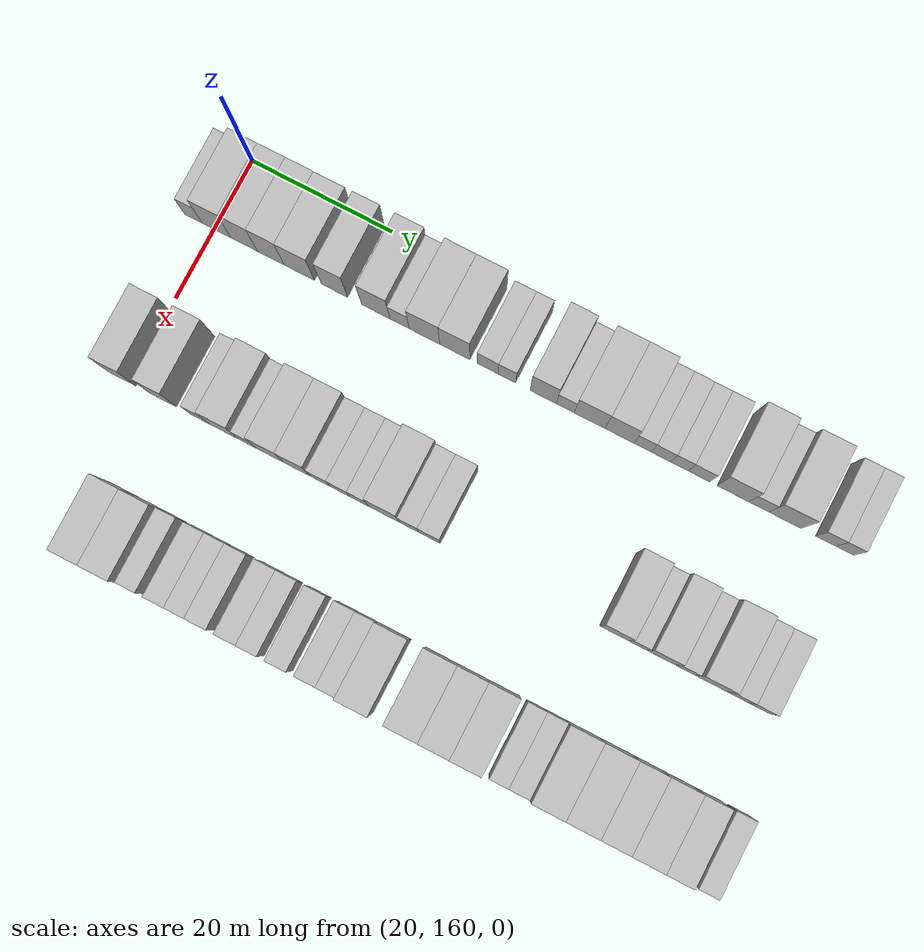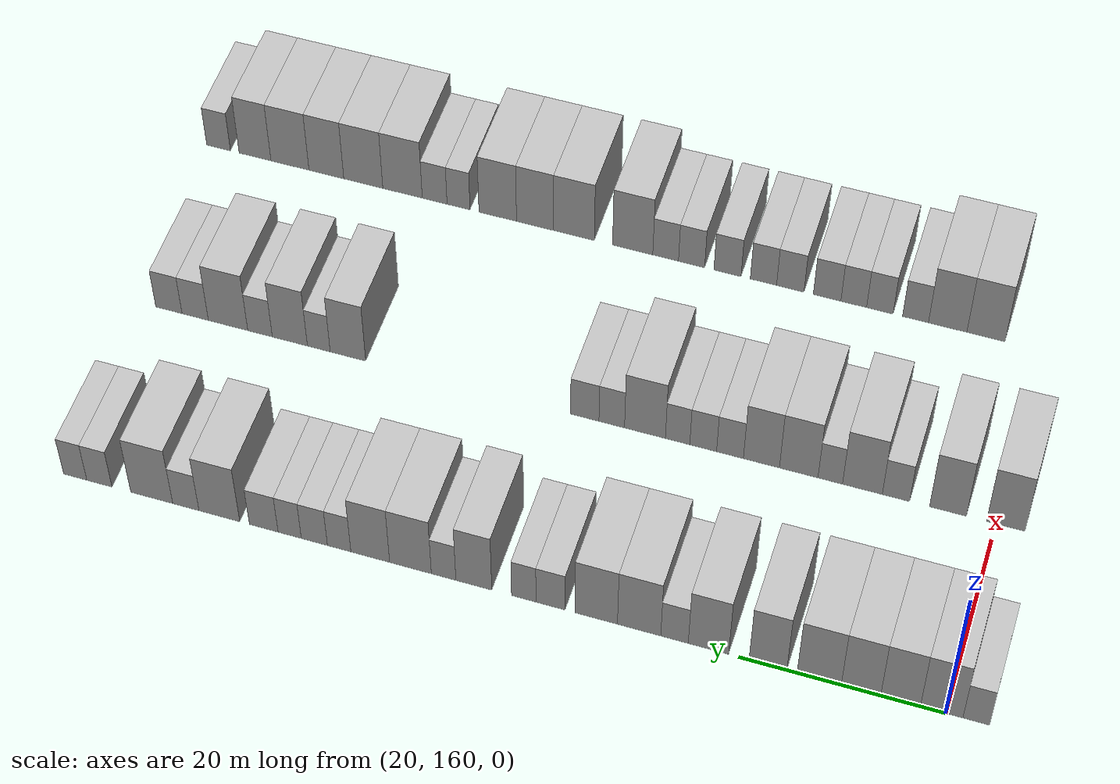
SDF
<sdf version="1.6">
 <world name="default">
  <model name="building_97">
   <static>1</static>
   <pose>25.0000 157.0864 0 0.000000 0.000000 0.000000</pose>
   <link name="link">
    <pose>0 0 3.00 0 0 0</pose>
    <collision name="collision"><geometry><box><size>10.0000 2.5340 6.0000</size></box></geometry></collision>
    <visual name="visual">
     <cast_shadows>0</cast_shadows>
     <geometry><box><size>10.0000 2.5340 6.0000</size></box></geometry>
     <material>
      <script>
       <uri>model://HANNAS_wall/materials/scripts</uri>
       <uri>model://HANNAS_wall/materials/textures</uri>
       <name>vrc/HANNAS_wall</name>
      </script>
     </material>
    </visual>
   </link>
  </model>
  <model name="building_98">
   <static>1</static>
   <pose>25.0000 160.3821 0 0.000000 0.000000 0.000000</pose>
   <link name="link">
    <pose>0 0 4.50 0 0 0</pose>
    <collision name="collision"><geometry><box><size>10.0000 4.0575 9.0000</size></box></geometry></collision>
    <visual name="visual">
     <cast_shadows>0</cast_shadows>
     <geometry><box><size>10.0000 4.0575 9.0000</size></box></geometry>
     <material>
      <script>
       <uri>model://HANNAS_wall/materials/scripts</uri>
       <uri>model://HANNAS_wall/materials/textures</uri>
       <name>vrc/HANNAS_wall</name>
      </script>
     </material>
    </visual>
   </link>
  </model>
  <model name="building_99">
   <static>1</static>
   <pose>25.0000 164.3133 0 0.000000 0.000000 0.000000</pose>
   <link name="link">
    <pose>0 0 4.50 0 0 0</pose>
    <collision name="collision"><geometry><box><size>10.0000 3.8048 9.0000</size></box></geometry></collision>
    <visual name="visual">
     <cast_shadows>0</cast_shadows>
     <geometry><box><size>10.0000 3.8048 9.0000</size></box></geometry>
     <material>
      <script>
       <uri>model://HANNAS_wall/materials/scripts</uri>
       <uri>model://HANNAS_wall/materials/textures</uri>
       <name>vrc/HANNAS_wall</name>
      </script>
     </material>
    </visual>
   </link>
  </model>
  <model name="building_100">
   <static>1</static>
   <pose>25.0000 168.1151 0 0.000000 0.000000 0.000000</pose>
   <link name="link">
    <pose>0 0 4.50 0 0 0</pose>
    <collision name="collision"><geometry><box><size>10.0000 3.7987 9.0000</size></box></geometry></collision>
    <visual name="visual">
     <cast_shadows>0</cast_shadows>
     <geometry><box><size>10.0000 3.7987 9.0000</size></box></geometry>
     <material>
      <script>
       <uri>model://HANNAS_wall/materials/scripts</uri>
       <uri>model://HANNAS_wall/materials/textures</uri>
       <name>vrc/HANNAS_wall</name>
      </script>
     </material>
    </visual>
   </link>
  </model>
  <model name="building_101">
   <static>1</static>
   <pose>25.0000 172.1511 0 0.000000 0.000000 0.000000</pose>
   <link name="link">
    <pose>0 0 4.50 0 0 0</pose>
    <collision name="collision"><geometry><box><size>10.0000 4.2734 9.0000</size></box></geometry></collision>
    <visual name="visual">
     <cast_shadows>0</cast_shadows>
     <geometry><box><size>10.0000 4.2734 9.0000</size></box></geometry>
     <material>
      <script>
       <uri>model://HANNAS_wall/materials/scripts</uri>
       <uri>model://HANNAS_wall/materials/textures</uri>
       <name>vrc/HANNAS_wall</name>
      </script>
     </material>
    </visual>
   </link>
  </model>
  <model name="building_102">
   <static>1</static>
   <pose>25.0000 177.1280 0 0.000000 0.000000 0.000000</pose>
   <link name="link">
    <pose>0 0 4.50 0 0 0</pose>
    <collision name="collision"><geometry><box><size>10.0000 3.6802 9.0000</size></box></geometry></collision>
    <visual name="visual">
     <cast_shadows>0</cast_shadows>
     <geometry><box><size>10.0000 3.6802 9.0000</size></box></geometry>
     <material>
      <script>
       <uri>model://HANNAS_wall/materials/scripts</uri>
       <uri>model://HANNAS_wall/materials/textures</uri>
       <name>vrc/HANNAS_wall</name>
      </script>
     </material>
    </visual>
   </link>
  </model>
  <model name="building_103">
   <static>1</static>
   <pose>25.0000 182.9523 0 0.000000 0.000000 0.000000</pose>
   <link name="link">
    <pose>0 0 4.50 0 0 0</pose>
    <collision name="collision"><geometry><box><size>10.0000 3.9685 9.0000</size></box></geometry></collision>
    <visual name="visual">
     <cast_shadows>0</cast_shadows>
     <geometry><box><size>10.0000 3.9685 9.0000</size></box></geometry>
     <material>
      <script>
       <uri>model://HANNAS_wall/materials/scripts</uri>
       <uri>model://HANNAS_wall/materials/textures</uri>
       <name>vrc/HANNAS_wall</name>
      </script>
     </material>
    </visual>
   </link>
  </model>
  <model name="building_104">
   <static>1</static>
   <pose>25.0000 186.2955 0 0.000000 0.000000 0.000000</pose>
   <link name="link">
    <pose>0 0 3.00 0 0 0</pose>
    <collision name="collision"><geometry><box><size>10.0000 2.7180 6.0000</size></box></geometry></collision>
    <visual name="visual">
     <cast_shadows>0</cast_shadows>
     <geometry><box><size>10.0000 2.7180 6.0000</size></box></geometry>
     <material>
      <script>
       <uri>model://HANNAS_wall/materials/scripts</uri>
       <uri>model://HANNAS_wall/materials/textures</uri>
       <name>vrc/HANNAS_wall</name>
      </script>
     </material>
    </visual>
   </link>
  </model>
  <model name="building_105">
   <static>1</static>
   <pose>25.0000 189.8012 0 0.000000 0.000000 0.000000</pose>
   <link name="link">
    <pose>0 0 4.50 0 0 0</pose>
    <collision name="collision"><geometry><box><size>10.0000 4.2934 9.0000</size></box></geometry></collision>
    <visual name="visual">
     <cast_shadows>0</cast_shadows>
     <geometry><box><size>10.0000 4.2934 9.0000</size></box></geometry>
     <material>
      <script>
       <uri>model://HANNAS_wall/materials/scripts</uri>
       <uri>model://HANNAS_wall/materials/textures</uri>
       <name>vrc/HANNAS_wall</name>
      </script>
     </material>
    </visual>
   </link>
  </model>
  <model name="building_106">
   <static>1</static>
   <pose>25.0000 194.0590 0 0.000000 0.000000 0.000000</pose>
   <link name="link">
    <pose>0 0 4.50 0 0 0</pose>
    <collision name="collision"><geometry><box><size>10.0000 4.2221 9.0000</size></box></geometry></collision>
    <visual name="visual">
     <cast_shadows>0</cast_shadows>
     <geometry><box><size>10.0000 4.2221 9.0000</size></box></geometry>
     <material>
      <script>
       <uri>model://HANNAS_wall/materials/scripts</uri>
       <uri>model://HANNAS_wall/materials/textures</uri>
       <name>vrc/HANNAS_wall</name>
      </script>
     </material>
    </visual>
   </link>
  </model>
  <model name="building_107">
   <static>1</static>
   <pose>25.0000 198.6280 0 0.000000 0.000000 0.000000</pose>
   <link name="link">
    <pose>0 0 3.00 0 0 0</pose>
    <collision name="collision"><geometry><box><size>10.0000 2.9160 6.0000</size></box></geometry></collision>
    <visual name="visual">
     <cast_shadows>0</cast_shadows>
     <geometry><box><size>10.0000 2.9160 6.0000</size></box></geometry>
     <material>
      <script>
       <uri>model://HANNAS_wall/materials/scripts</uri>
       <uri>model://HANNAS_wall/materials/textures</uri>
       <name>vrc/HANNAS_wall</name>
      </script>
     </material>
    </visual>
   </link>
  </model>
  <model name="building_108">
   <static>1</static>
   <pose>25.0000 201.3166 0 0.000000 0.000000 0.000000</pose>
   <link name="link">
    <pose>0 0 3.00 0 0 0</pose>
    <collision name="collision"><geometry><box><size>10.0000 2.4613 6.0000</size></box></geometry></collision>
    <visual name="visual">
     <cast_shadows>0</cast_shadows>
     <geometry><box><size>10.0000 2.4613 6.0000</size></box></geometry>
     <material>
      <script>
       <uri>model://HANNAS_wall/materials/scripts</uri>
       <uri>model://HANNAS_wall/materials/textures</uri>
       <name>vrc/HANNAS_wall</name>
      </script>
     </material>
    </visual>
   </link>
  </model>
  <model name="building_109">
   <static>1</static>
   <pose>25.0000 206.3667 0 0.000000 0.000000 0.000000</pose>
   <link name="link">
    <pose>0 0 4.50 0 0 0</pose>
    <collision name="collision"><geometry><box><size>10.0000 3.6388 9.0000</size></box></geometry></collision>
    <visual name="visual">
     <cast_shadows>0</cast_shadows>
     <geometry><box><size>10.0000 3.6388 9.0000</size></box></geometry>
     <material>
      <script>
       <uri>model://HANNAS_wall/materials/scripts</uri>
       <uri>model://HANNAS_wall/materials/textures</uri>
       <name>vrc/HANNAS_wall</name>
      </script>
     </material>
    </visual>
   </link>
  </model>
  <model name="building_110">
   <static>1</static>
   <pose>25.0000 209.4341 0 0.000000 0.000000 0.000000</pose>
   <link name="link">
    <pose>0 0 3.00 0 0 0</pose>
    <collision name="collision"><geometry><box><size>10.0000 2.4960 6.0000</size></box></geometry></collision>
    <visual name="visual">
     <cast_shadows>0</cast_shadows>
     <geometry><box><size>10.0000 2.4960 6.0000</size></box></geometry>
     <material>
      <script>
       <uri>model://HANNAS_wall/materials/scripts</uri>
       <uri>model://HANNAS_wall/materials/textures</uri>
       <name>vrc/HANNAS_wall</name>
      </script>
     </material>
    </visual>
   </link>
  </model>
  <model name="building_111">
   <static>1</static>
   <pose>25.0000 212.8134 0 0.000000 0.000000 0.000000</pose>
   <link name="link">
    <pose>0 0 4.50 0 0 0</pose>
    <collision name="collision"><geometry><box><size>10.0000 4.2626 9.0000</size></box></geometry></collision>
    <visual name="visual">
     <cast_shadows>0</cast_shadows>
     <geometry><box><size>10.0000 4.2626 9.0000</size></box></geometry>
     <material>
      <script>
       <uri>model://HANNAS_wall/materials/scripts</uri>
       <uri>model://HANNAS_wall/materials/textures</uri>
       <name>vrc/HANNAS_wall</name>
      </script>
     </material>
    </visual>
   </link>
  </model>
  <model name="building_112">
   <static>1</static>
   <pose>25.0000 216.9367 0 0.000000 0.000000 0.000000</pose>
   <link name="link">
    <pose>0 0 4.50 0 0 0</pose>
    <collision name="collision"><geometry><box><size>10.0000 3.9840 9.0000</size></box></geometry></collision>
    <visual name="visual">
     <cast_shadows>0</cast_shadows>
     <geometry><box><size>10.0000 3.9840 9.0000</size></box></geometry>
     <material>
      <script>
       <uri>model://HANNAS_wall/materials/scripts</uri>
       <uri>model://HANNAS_wall/materials/textures</uri>
       <name>vrc/HANNAS_wall</name>
      </script>
     </material>
    </visual>
   </link>
  </model>
  <model name="building_113">
   <static>1</static>
   <pose>25.0000 220.1398 0 0.000000 0.000000 0.000000</pose>
   <link name="link">
    <pose>0 0 3.00 0 0 0</pose>
    <collision name="collision"><geometry><box><size>10.0000 2.4222 6.0000</size></box></geometry></collision>
    <visual name="visual">
     <cast_shadows>0</cast_shadows>
     <geometry><box><size>10.0000 2.4222 6.0000</size></box></geometry>
     <material>
      <script>
       <uri>model://HANNAS_wall/materials/scripts</uri>
       <uri>model://HANNAS_wall/materials/textures</uri>
       <name>vrc/HANNAS_wall</name>
      </script>
     </material>
    </visual>
   </link>
  </model>
  <model name="building_114">
   <static>1</static>
   <pose>25.0000 222.7028 0 0.000000 0.000000 0.000000</pose>
   <link name="link">
    <pose>0 0 3.00 0 0 0</pose>
    <collision name="collision"><geometry><box><size>10.0000 2.7039 6.0000</size></box></geometry></collision>
    <visual name="visual">
     <cast_shadows>0</cast_shadows>
     <geometry><box><size>10.0000 2.7039 6.0000</size></box></geometry>
     <material>
      <script>
       <uri>model://HANNAS_wall/materials/scripts</uri>
       <uri>model://HANNAS_wall/materials/textures</uri>
       <name>vrc/HANNAS_wall</name>
      </script>
     </material>
    </visual>
   </link>
  </model>
  <model name="building_115">
   <static>1</static>
   <pose>25.0000 225.2607 0 0.000000 0.000000 0.000000</pose>
   <link name="link">
    <pose>0 0 3.00 0 0 0</pose>
    <collision name="collision"><geometry><box><size>10.0000 2.4117 6.0000</size></box></geometry></collision>
    <visual name="visual">
     <cast_shadows>0</cast_shadows>
     <geometry><box><size>10.0000 2.4117 6.0000</size></box></geometry>
     <material>
      <script>
       <uri>model://HANNAS_wall/materials/scripts</uri>
       <uri>model://HANNAS_wall/materials/textures</uri>
       <name>vrc/HANNAS_wall</name>
      </script>
     </material>
    </visual>
   </link>
  </model>
  <model name="building_116">
   <static>1</static>
   <pose>25.0000 227.9627 0 0.000000 0.000000 0.000000</pose>
   <link name="link">
    <pose>0 0 3.00 0 0 0</pose>
    <collision name="collision"><geometry><box><size>10.0000 2.9924 6.0000</size></box></geometry></collision>
    <visual name="visual">
     <cast_shadows>0</cast_shadows>
     <geometry><box><size>10.0000 2.9924 6.0000</size></box></geometry>
     <material>
      <script>
       <uri>model://HANNAS_wall/materials/scripts</uri>
       <uri>model://HANNAS_wall/materials/textures</uri>
       <name>vrc/HANNAS_wall</name>
      </script>
     </material>
    </visual>
   </link>
  </model>
  <model name="building_117">
   <static>1</static>
   <pose>25.0000 232.5999 0 0.000000 0.000000 0.000000</pose>
   <link name="link">
    <pose>0 0 4.50 0 0 0</pose>
    <collision name="collision"><geometry><box><size>10.0000 4.2818 9.0000</size></box></geometry></collision>
    <visual name="visual">
     <cast_shadows>0</cast_shadows>
     <geometry><box><size>10.0000 4.2818 9.0000</size></box></geometry>
     <material>
      <script>
       <uri>model://HANNAS_wall/materials/scripts</uri>
       <uri>model://HANNAS_wall/materials/textures</uri>
       <name>vrc/HANNAS_wall</name>
      </script>
     </material>
    </visual>
   </link>
  </model>
  <model name="building_118">
   <static>1</static>
   <pose>25.0000 236.1278 0 0.000000 0.000000 0.000000</pose>
   <link name="link">
    <pose>0 0 3.00 0 0 0</pose>
    <collision name="collision"><geometry><box><size>10.0000 2.7741 6.0000</size></box></geometry></collision>
    <visual name="visual">
     <cast_shadows>0</cast_shadows>
     <geometry><box><size>10.0000 2.7741 6.0000</size></box></geometry>
     <material>
      <script>
       <uri>model://HANNAS_wall/materials/scripts</uri>
       <uri>model://HANNAS_wall/materials/textures</uri>
       <name>vrc/HANNAS_wall</name>
      </script>
     </material>
    </visual>
   </link>
  </model>
  <model name="building_119">
   <static>1</static>
   <pose>25.0000 239.7328 0 0.000000 0.000000 0.000000</pose>
   <link name="link">
    <pose>0 0 4.50 0 0 0</pose>
    <collision name="collision"><geometry><box><size>10.0000 4.4359 9.0000</size></box></geometry></collision>
    <visual name="visual">
     <cast_shadows>0</cast_shadows>
     <geometry><box><size>10.0000 4.4359 9.0000</size></box></geometry>
     <material>
      <script>
       <uri>model://HANNAS_wall/materials/scripts</uri>
       <uri>model://HANNAS_wall/materials/textures</uri>
       <name>vrc/HANNAS_wall</name>
      </script>
     </material>
    </visual>
   </link>
  </model>
  <model name="building_120">
   <static>1</static>
   <pose>25.0000 245.2929 0 0.000000 0.000000 0.000000</pose>
   <link name="link">
    <pose>0 0 3.00 0 0 0</pose>
    <collision name="collision"><geometry><box><size>10.0000 2.6842 6.0000</size></box></geometry></collision>
    <visual name="visual">
     <cast_shadows>0</cast_shadows>
     <geometry><box><size>10.0000 2.6842 6.0000</size></box></geometry>
     <material>
      <script>
       <uri>model://HANNAS_wall/materials/scripts</uri>
       <uri>model://HANNAS_wall/materials/textures</uri>
       <name>vrc/HANNAS_wall</name>
      </script>
     </material>
    </visual>
   </link>
  </model>
  <model name="building_121">
   <static>1</static>
   <pose>25.0000 247.8739 0 0.000000 0.000000 0.000000</pose>
   <link name="link">
    <pose>0 0 3.00 0 0 0</pose>
    <collision name="collision"><geometry><box><size>10.0000 2.4778 6.0000</size></box></geometry></collision>
    <visual name="visual">
     <cast_shadows>0</cast_shadows>
     <geometry><box><size>10.0000 2.4778 6.0000</size></box></geometry>
     <material>
      <script>
       <uri>model://HANNAS_wall/materials/scripts</uri>
       <uri>model://HANNAS_wall/materials/textures</uri>
       <name>vrc/HANNAS_wall</name>
      </script>
     </material>
    </visual>
   </link>
  </model>
  <model name="building_209">
   <static>1</static>
   <pose>47.0000 159.0225 0 0.000000 0.000000 0.000000</pose>
   <link name="link">
    <pose>0 0 4.50 0 0 0</pose>
    <collision name="collision"><geometry><box><size>10.0000 3.8296 9.0000</size></box></geometry></collision>
    <visual name="visual">
     <cast_shadows>0</cast_shadows>
     <geometry><box><size>10.0000 3.8296 9.0000</size></box></geometry>
     <material>
      <script>
       <uri>model://HANNAS_wall/materials/scripts</uri>
       <uri>model://HANNAS_wall/materials/textures</uri>
       <name>vrc/HANNAS_wall</name>
      </script>
     </material>
    </visual>
   </link>
  </model>
  <model name="building_210">
   <static>1</static>
   <pose>47.0000 164.7819 0 0.000000 0.000000 0.000000</pose>
   <link name="link">
    <pose>0 0 4.50 0 0 0</pose>
    <collision name="collision"><geometry><box><size>10.0000 3.6892 9.0000</size></box></geometry></collision>
    <visual name="visual">
     <cast_shadows>0</cast_shadows>
     <geometry><box><size>10.0000 3.6892 9.0000</size></box></geometry>
     <material>
      <script>
       <uri>model://HANNAS_wall/materials/scripts</uri>
       <uri>model://HANNAS_wall/materials/textures</uri>
       <name>vrc/HANNAS_wall</name>
      </script>
     </material>
    </visual>
   </link>
  </model>
  <model name="building_211">
   <static>1</static>
   <pose>47.0000 170.0076 0 0.000000 0.000000 0.000000</pose>
   <link name="link">
    <pose>0 0 3.00 0 0 0</pose>
    <collision name="collision"><geometry><box><size>10.0000 2.7621 6.0000</size></box></geometry></collision>
    <visual name="visual">
     <cast_shadows>0</cast_shadows>
     <geometry><box><size>10.0000 2.7621 6.0000</size></box></geometry>
     <material>
      <script>
       <uri>model://HANNAS_wall/materials/scripts</uri>
       <uri>model://HANNAS_wall/materials/textures</uri>
       <name>vrc/HANNAS_wall</name>
      </script>
     </material>
    </visual>
   </link>
  </model>
  <model name="building_212">
   <static>1</static>
   <pose>47.0000 173.4027 0 0.000000 0.000000 0.000000</pose>
   <link name="link">
    <pose>0 0 4.50 0 0 0</pose>
    <collision name="collision"><geometry><box><size>10.0000 4.0282 9.0000</size></box></geometry></collision>
    <visual name="visual">
     <cast_shadows>0</cast_shadows>
     <geometry><box><size>10.0000 4.0282 9.0000</size></box></geometry>
     <material>
      <script>
       <uri>model://HANNAS_wall/materials/scripts</uri>
       <uri>model://HANNAS_wall/materials/textures</uri>
       <name>vrc/HANNAS_wall</name>
      </script>
     </material>
    </visual>
   </link>
  </model>
  <model name="building_213">
   <static>1</static>
   <pose>47.0000 176.6625 0 0.000000 0.000000 0.000000</pose>
   <link name="link">
    <pose>0 0 3.00 0 0 0</pose>
    <collision name="collision"><geometry><box><size>10.0000 2.4915 6.0000</size></box></geometry></collision>
    <visual name="visual">
     <cast_shadows>0</cast_shadows>
     <geometry><box><size>10.0000 2.4915 6.0000</size></box></geometry>
     <material>
      <script>
       <uri>model://HANNAS_wall/materials/scripts</uri>
       <uri>model://HANNAS_wall/materials/textures</uri>
       <name>vrc/HANNAS_wall</name>
      </script>
     </material>
    </visual>
   </link>
  </model>
  <model name="building_214">
   <static>1</static>
   <pose>47.0000 179.8755 0 0.000000 0.000000 0.000000</pose>
   <link name="link">
    <pose>0 0 4.50 0 0 0</pose>
    <collision name="collision"><geometry><box><size>10.0000 3.9344 9.0000</size></box></geometry></collision>
    <visual name="visual">
     <cast_shadows>0</cast_shadows>
     <geometry><box><size>10.0000 3.9344 9.0000</size></box></geometry>
     <material>
      <script>
       <uri>model://HANNAS_wall/materials/scripts</uri>
       <uri>model://HANNAS_wall/materials/textures</uri>
       <name>vrc/HANNAS_wall</name>
      </script>
     </material>
    </visual>
   </link>
  </model>
  <model name="building_215">
   <static>1</static>
   <pose>47.0000 183.6905 0 0.000000 0.000000 0.000000</pose>
   <link name="link">
    <pose>0 0 4.50 0 0 0</pose>
    <collision name="collision"><geometry><box><size>10.0000 3.6955 9.0000</size></box></geometry></collision>
    <visual name="visual">
     <cast_shadows>0</cast_shadows>
     <geometry><box><size>10.0000 3.6955 9.0000</size></box></geometry>
     <material>
      <script>
       <uri>model://HANNAS_wall/materials/scripts</uri>
       <uri>model://HANNAS_wall/materials/textures</uri>
       <name>vrc/HANNAS_wall</name>
      </script>
     </material>
    </visual>
   </link>
  </model>
  <model name="building_216">
   <static>1</static>
   <pose>47.0000 186.9175 0 0.000000 0.000000 0.000000</pose>
   <link name="link">
    <pose>0 0 3.00 0 0 0</pose>
    <collision name="collision"><geometry><box><size>10.0000 2.7586 6.0000</size></box></geometry></collision>
    <visual name="visual">
     <cast_shadows>0</cast_shadows>
     <geometry><box><size>10.0000 2.7586 6.0000</size></box></geometry>
     <material>
      <script>
       <uri>model://HANNAS_wall/materials/scripts</uri>
       <uri>model://HANNAS_wall/materials/textures</uri>
       <name>vrc/HANNAS_wall</name>
      </script>
     </material>
    </visual>
   </link>
  </model>
  <model name="building_217">
   <static>1</static>
   <pose>47.0000 189.6807 0 0.000000 0.000000 0.000000</pose>
   <link name="link">
    <pose>0 0 3.00 0 0 0</pose>
    <collision name="collision"><geometry><box><size>10.0000 2.7678 6.0000</size></box></geometry></collision>
    <visual name="visual">
     <cast_shadows>0</cast_shadows>
     <geometry><box><size>10.0000 2.7678 6.0000</size></box></geometry>
     <material>
      <script>
       <uri>model://HANNAS_wall/materials/scripts</uri>
       <uri>model://HANNAS_wall/materials/textures</uri>
       <name>vrc/HANNAS_wall</name>
      </script>
     </material>
    </visual>
   </link>
  </model>
  <model name="building_218">
   <static>1</static>
   <pose>47.0000 192.3309 0 0.000000 0.000000 0.000000</pose>
   <link name="link">
    <pose>0 0 3.00 0 0 0</pose>
    <collision name="collision"><geometry><box><size>10.0000 2.5325 6.0000</size></box></geometry></collision>
    <visual name="visual">
     <cast_shadows>0</cast_shadows>
     <geometry><box><size>10.0000 2.5325 6.0000</size></box></geometry>
     <material>
      <script>
       <uri>model://HANNAS_wall/materials/scripts</uri>
       <uri>model://HANNAS_wall/materials/textures</uri>
       <name>vrc/HANNAS_wall</name>
      </script>
     </material>
    </visual>
   </link>
  </model>
  <model name="building_219">
   <static>1</static>
   <pose>47.0000 195.7220 0 0.000000 0.000000 0.000000</pose>
   <link name="link">
    <pose>0 0 4.50 0 0 0</pose>
    <collision name="collision"><geometry><box><size>10.0000 4.2497 9.0000</size></box></geometry></collision>
    <visual name="visual">
     <cast_shadows>0</cast_shadows>
     <geometry><box><size>10.0000 4.2497 9.0000</size></box></geometry>
     <material>
      <script>
       <uri>model://HANNAS_wall/materials/scripts</uri>
       <uri>model://HANNAS_wall/materials/textures</uri>
       <name>vrc/HANNAS_wall</name>
      </script>
     </material>
    </visual>
   </link>
  </model>
  <model name="building_220">
   <static>1</static>
   <pose>47.0000 199.1849 0 0.000000 0.000000 0.000000</pose>
   <link name="link">
    <pose>0 0 3.00 0 0 0</pose>
    <collision name="collision"><geometry><box><size>10.0000 2.6760 6.0000</size></box></geometry></collision>
    <visual name="visual">
     <cast_shadows>0</cast_shadows>
     <geometry><box><size>10.0000 2.6760 6.0000</size></box></geometry>
     <material>
      <script>
       <uri>model://HANNAS_wall/materials/scripts</uri>
       <uri>model://HANNAS_wall/materials/textures</uri>
       <name>vrc/HANNAS_wall</name>
      </script>
     </material>
    </visual>
   </link>
  </model>
  <model name="building_221">
   <static>1</static>
   <pose>47.0000 202.0055 0 0.000000 0.000000 0.000000</pose>
   <link name="link">
    <pose>0 0 3.00 0 0 0</pose>
    <collision name="collision"><geometry><box><size>10.0000 2.9652 6.0000</size></box></geometry></collision>
    <visual name="visual">
     <cast_shadows>0</cast_shadows>
     <geometry><box><size>10.0000 2.9652 6.0000</size></box></geometry>
     <material>
      <script>
       <uri>model://HANNAS_wall/materials/scripts</uri>
       <uri>model://HANNAS_wall/materials/textures</uri>
       <name>vrc/HANNAS_wall</name>
      </script>
     </material>
    </visual>
   </link>
  </model>
  <model name="building_222">
   <static>1</static>
   <pose>47.0000 227.2611 0 0.000000 0.000000 0.000000</pose>
   <link name="link">
    <pose>0 0 4.50 0 0 0</pose>
    <collision name="collision"><geometry><box><size>10.0000 3.8487 9.0000</size></box></geometry></collision>
    <visual name="visual">
     <cast_shadows>0</cast_shadows>
     <geometry><box><size>10.0000 3.8487 9.0000</size></box></geometry>
     <material>
      <script>
       <uri>model://HANNAS_wall/materials/scripts</uri>
       <uri>model://HANNAS_wall/materials/textures</uri>
       <name>vrc/HANNAS_wall</name>
      </script>
     </material>
    </visual>
   </link>
  </model>
  <model name="building_223">
   <static>1</static>
   <pose>47.0000 230.4252 0 0.000000 0.000000 0.000000</pose>
   <link name="link">
    <pose>0 0 3.00 0 0 0</pose>
    <collision name="collision"><geometry><box><size>10.0000 2.4795 6.0000</size></box></geometry></collision>
    <visual name="visual">
     <cast_shadows>0</cast_shadows>
     <geometry><box><size>10.0000 2.4795 6.0000</size></box></geometry>
     <material>
      <script>
       <uri>model://HANNAS_wall/materials/scripts</uri>
       <uri>model://HANNAS_wall/materials/textures</uri>
       <name>vrc/HANNAS_wall</name>
      </script>
     </material>
    </visual>
   </link>
  </model>
  <model name="building_224">
   <static>1</static>
   <pose>47.0000 233.5793 0 0.000000 0.000000 0.000000</pose>
   <link name="link">
    <pose>0 0 4.50 0 0 0</pose>
    <collision name="collision"><geometry><box><size>10.0000 3.8287 9.0000</size></box></geometry></collision>
    <visual name="visual">
     <cast_shadows>0</cast_shadows>
     <geometry><box><size>10.0000 3.8287 9.0000</size></box></geometry>
     <material>
      <script>
       <uri>model://HANNAS_wall/materials/scripts</uri>
       <uri>model://HANNAS_wall/materials/textures</uri>
       <name>vrc/HANNAS_wall</name>
      </script>
     </material>
    </visual>
   </link>
  </model>
  <model name="building_225">
   <static>1</static>
   <pose>47.0000 236.8414 0 0.000000 0.000000 0.000000</pose>
   <link name="link">
    <pose>0 0 3.00 0 0 0</pose>
    <collision name="collision"><geometry><box><size>10.0000 2.6955 6.0000</size></box></geometry></collision>
    <visual name="visual">
     <cast_shadows>0</cast_shadows>
     <geometry><box><size>10.0000 2.6955 6.0000</size></box></geometry>
     <material>
      <script>
       <uri>model://HANNAS_wall/materials/scripts</uri>
       <uri>model://HANNAS_wall/materials/textures</uri>
       <name>vrc/HANNAS_wall</name>
      </script>
     </material>
    </visual>
   </link>
  </model>
  <model name="building_226">
   <static>1</static>
   <pose>47.0000 240.3608 0 0.000000 0.000000 0.000000</pose>
   <link name="link">
    <pose>0 0 4.50 0 0 0</pose>
    <collision name="collision"><geometry><box><size>10.0000 4.3433 9.0000</size></box></geometry></collision>
    <visual name="visual">
     <cast_shadows>0</cast_shadows>
     <geometry><box><size>10.0000 4.3433 9.0000</size></box></geometry>
     <material>
      <script>
       <uri>model://HANNAS_wall/materials/scripts</uri>
       <uri>model://HANNAS_wall/materials/textures</uri>
       <name>vrc/HANNAS_wall</name>
      </script>
     </material>
    </visual>
   </link>
  </model>
  <model name="building_227">
   <static>1</static>
   <pose>47.0000 243.9839 0 0.000000 0.000000 0.000000</pose>
   <link name="link">
    <pose>0 0 3.00 0 0 0</pose>
    <collision name="collision"><geometry><box><size>10.0000 2.9029 6.0000</size></box></geometry></collision>
    <visual name="visual">
     <cast_shadows>0</cast_shadows>
     <geometry><box><size>10.0000 2.9029 6.0000</size></box></geometry>
     <material>
      <script>
       <uri>model://HANNAS_wall/materials/scripts</uri>
       <uri>model://HANNAS_wall/materials/textures</uri>
       <name>vrc/HANNAS_wall</name>
      </script>
     </material>
    </visual>
   </link>
  </model>
  <model name="building_228">
   <static>1</static>
   <pose>47.0000 246.8902 0 0.000000 0.000000 0.000000</pose>
   <link name="link">
    <pose>0 0 3.00 0 0 0</pose>
    <collision name="collision"><geometry><box><size>10.0000 2.9099 6.0000</size></box></geometry></collision>
    <visual name="visual">
     <cast_shadows>0</cast_shadows>
     <geometry><box><size>10.0000 2.9099 6.0000</size></box></geometry>
     <material>
      <script>
       <uri>model://HANNAS_wall/materials/scripts</uri>
       <uri>model://HANNAS_wall/materials/textures</uri>
       <name>vrc/HANNAS_wall</name>
      </script>
     </material>
    </visual>
   </link>
  </model>
  <model name="building_319">
   <static>1</static>
   <pose>69.0000 165.8180 0 0.000000 0.000000 0.000000</pose>
   <link name="link">
    <pose>0 0 4.50 0 0 0</pose>
    <collision name="collision"><geometry><box><size>10.0000 3.9841 9.0000</size></box></geometry></collision>
    <visual name="visual">
     <cast_shadows>0</cast_shadows>
     <geometry><box><size>10.0000 3.9841 9.0000</size></box></geometry>
     <material>
      <script>
       <uri>model://HANNAS_wall/materials/scripts</uri>
       <uri>model://HANNAS_wall/materials/textures</uri>
       <name>vrc/HANNAS_wall</name>
      </script>
     </material>
    </visual>
   </link>
  </model>
  <model name="building_320">
   <static>1</static>
   <pose>69.0000 169.8267 0 0.000000 0.000000 0.000000</pose>
   <link name="link">
    <pose>0 0 4.50 0 0 0</pose>
    <collision name="collision"><geometry><box><size>10.0000 4.0333 9.0000</size></box></geometry></collision>
    <visual name="visual">
     <cast_shadows>0</cast_shadows>
     <geometry><box><size>10.0000 4.0333 9.0000</size></box></geometry>
     <material>
      <script>
       <uri>model://HANNAS_wall/materials/scripts</uri>
       <uri>model://HANNAS_wall/materials/textures</uri>
       <name>vrc/HANNAS_wall</name>
      </script>
     </material>
    </visual>
   </link>
  </model>
  <model name="building_321">
   <static>1</static>
   <pose>69.0000 173.2057 0 0.000000 0.000000 0.000000</pose>
   <link name="link">
    <pose>0 0 3.00 0 0 0</pose>
    <collision name="collision"><geometry><box><size>10.0000 2.7247 6.0000</size></box></geometry></collision>
    <visual name="visual">
     <cast_shadows>0</cast_shadows>
     <geometry><box><size>10.0000 2.7247 6.0000</size></box></geometry>
     <material>
      <script>
       <uri>model://HANNAS_wall/materials/scripts</uri>
       <uri>model://HANNAS_wall/materials/textures</uri>
       <name>vrc/HANNAS_wall</name>
      </script>
     </material>
    </visual>
   </link>
  </model>
  <model name="building_322">
   <static>1</static>
   <pose>69.0000 176.9713 0 0.000000 0.000000 0.000000</pose>
   <link name="link">
    <pose>0 0 3.00 0 0 0</pose>
    <collision name="collision"><geometry><box><size>10.0000 2.8066 6.0000</size></box></geometry></collision>
    <visual name="visual">
     <cast_shadows>0</cast_shadows>
     <geometry><box><size>10.0000 2.8066 6.0000</size></box></geometry>
     <material>
      <script>
       <uri>model://HANNAS_wall/materials/scripts</uri>
       <uri>model://HANNAS_wall/materials/textures</uri>
       <name>vrc/HANNAS_wall</name>
      </script>
     </material>
    </visual>
   </link>
  </model>
  <model name="building_323">
   <static>1</static>
   <pose>69.0000 179.7423 0 0.000000 0.000000 0.000000</pose>
   <link name="link">
    <pose>0 0 3.00 0 0 0</pose>
    <collision name="collision"><geometry><box><size>10.0000 2.7353 6.0000</size></box></geometry></collision>
    <visual name="visual">
     <cast_shadows>0</cast_shadows>
     <geometry><box><size>10.0000 2.7353 6.0000</size></box></geometry>
     <material>
      <script>
       <uri>model://HANNAS_wall/materials/scripts</uri>
       <uri>model://HANNAS_wall/materials/textures</uri>
       <name>vrc/HANNAS_wall</name>
      </script>
     </material>
    </visual>
   </link>
  </model>
  <model name="building_324">
   <static>1</static>
   <pose>69.0000 182.5749 0 0.000000 0.000000 0.000000</pose>
   <link name="link">
    <pose>0 0 3.00 0 0 0</pose>
    <collision name="collision"><geometry><box><size>10.0000 2.9299 6.0000</size></box></geometry></collision>
    <visual name="visual">
     <cast_shadows>0</cast_shadows>
     <geometry><box><size>10.0000 2.9299 6.0000</size></box></geometry>
     <material>
      <script>
       <uri>model://HANNAS_wall/materials/scripts</uri>
       <uri>model://HANNAS_wall/materials/textures</uri>
       <name>vrc/HANNAS_wall</name>
      </script>
     </material>
    </visual>
   </link>
  </model>
  <model name="building_325">
   <static>1</static>
   <pose>69.0000 186.5075 0 0.000000 0.000000 0.000000</pose>
   <link name="link">
    <pose>0 0 3.00 0 0 0</pose>
    <collision name="collision"><geometry><box><size>10.0000 2.9354 6.0000</size></box></geometry></collision>
    <visual name="visual">
     <cast_shadows>0</cast_shadows>
     <geometry><box><size>10.0000 2.9354 6.0000</size></box></geometry>
     <material>
      <script>
       <uri>model://HANNAS_wall/materials/scripts</uri>
       <uri>model://HANNAS_wall/materials/textures</uri>
       <name>vrc/HANNAS_wall</name>
      </script>
     </material>
    </visual>
   </link>
  </model>
  <model name="building_326">
   <static>1</static>
   <pose>69.0000 189.3876 0 0.000000 0.000000 0.000000</pose>
   <link name="link">
    <pose>0 0 3.00 0 0 0</pose>
    <collision name="collision"><geometry><box><size>10.0000 2.8249 6.0000</size></box></geometry></collision>
    <visual name="visual">
     <cast_shadows>0</cast_shadows>
     <geometry><box><size>10.0000 2.8249 6.0000</size></box></geometry>
     <material>
      <script>
       <uri>model://HANNAS_wall/materials/scripts</uri>
       <uri>model://HANNAS_wall/materials/textures</uri>
       <name>vrc/HANNAS_wall</name>
      </script>
     </material>
    </visual>
   </link>
  </model>
  <model name="building_327">
   <static>1</static>
   <pose>69.0000 193.2638 0 0.000000 0.000000 0.000000</pose>
   <link name="link">
    <pose>0 0 3.00 0 0 0</pose>
    <collision name="collision"><geometry><box><size>10.0000 2.9274 6.0000</size></box></geometry></collision>
    <visual name="visual">
     <cast_shadows>0</cast_shadows>
     <geometry><box><size>10.0000 2.9274 6.0000</size></box></geometry>
     <material>
      <script>
       <uri>model://HANNAS_wall/materials/scripts</uri>
       <uri>model://HANNAS_wall/materials/textures</uri>
       <name>vrc/HANNAS_wall</name>
      </script>
     </material>
    </visual>
   </link>
  </model>
  <model name="building_328">
   <static>1</static>
   <pose>69.0000 197.1477 0 0.000000 0.000000 0.000000</pose>
   <link name="link">
    <pose>0 0 3.00 0 0 0</pose>
    <collision name="collision"><geometry><box><size>10.0000 2.8405 6.0000</size></box></geometry></collision>
    <visual name="visual">
     <cast_shadows>0</cast_shadows>
     <geometry><box><size>10.0000 2.8405 6.0000</size></box></geometry>
     <material>
      <script>
       <uri>model://HANNAS_wall/materials/scripts</uri>
       <uri>model://HANNAS_wall/materials/textures</uri>
       <name>vrc/HANNAS_wall</name>
      </script>
     </material>
    </visual>
   </link>
  </model>
  <model name="building_329">
   <static>1</static>
   <pose>69.0000 199.9684 0 0.000000 0.000000 0.000000</pose>
   <link name="link">
    <pose>0 0 3.00 0 0 0</pose>
    <collision name="collision"><geometry><box><size>10.0000 2.8009 6.0000</size></box></geometry></collision>
    <visual name="visual">
     <cast_shadows>0</cast_shadows>
     <geometry><box><size>10.0000 2.8009 6.0000</size></box></geometry>
     <material>
      <script>
       <uri>model://HANNAS_wall/materials/scripts</uri>
       <uri>model://HANNAS_wall/materials/textures</uri>
       <name>vrc/HANNAS_wall</name>
      </script>
     </material>
    </visual>
   </link>
  </model>
  <model name="building_330">
   <static>1</static>
   <pose>69.0000 203.5645 0 0.000000 0.000000 0.000000</pose>
   <link name="link">
    <pose>0 0 4.50 0 0 0</pose>
    <collision name="collision"><geometry><box><size>10.0000 4.3913 9.0000</size></box></geometry></collision>
    <visual name="visual">
     <cast_shadows>0</cast_shadows>
     <geometry><box><size>10.0000 4.3913 9.0000</size></box></geometry>
     <material>
      <script>
       <uri>model://HANNAS_wall/materials/scripts</uri>
       <uri>model://HANNAS_wall/materials/textures</uri>
       <name>vrc/HANNAS_wall</name>
      </script>
     </material>
    </visual>
   </link>
  </model>
  <model name="building_331">
   <static>1</static>
   <pose>69.0000 210.0040 0 0.000000 0.000000 0.000000</pose>
   <link name="link">
    <pose>0 0 4.50 0 0 0</pose>
    <collision name="collision"><geometry><box><size>10.0000 4.4877 9.0000</size></box></geometry></collision>
    <visual name="visual">
     <cast_shadows>0</cast_shadows>
     <geometry><box><size>10.0000 4.4877 9.0000</size></box></geometry>
     <material>
      <script>
       <uri>model://HANNAS_wall/materials/scripts</uri>
       <uri>model://HANNAS_wall/materials/textures</uri>
       <name>vrc/HANNAS_wall</name>
      </script>
     </material>
    </visual>
   </link>
  </model>
  <model name="building_332">
   <static>1</static>
   <pose>69.0000 214.3051 0 0.000000 0.000000 0.000000</pose>
   <link name="link">
    <pose>0 0 4.50 0 0 0</pose>
    <collision name="collision"><geometry><box><size>10.0000 4.1144 9.0000</size></box></geometry></collision>
    <visual name="visual">
     <cast_shadows>0</cast_shadows>
     <geometry><box><size>10.0000 4.1144 9.0000</size></box></geometry>
     <material>
      <script>
       <uri>model://HANNAS_wall/materials/scripts</uri>
       <uri>model://HANNAS_wall/materials/textures</uri>
       <name>vrc/HANNAS_wall</name>
      </script>
     </material>
    </visual>
   </link>
  </model>
  <model name="building_333">
   <static>1</static>
   <pose>69.0000 218.4509 0 0.000000 0.000000 0.000000</pose>
   <link name="link">
    <pose>0 0 4.50 0 0 0</pose>
    <collision name="collision"><geometry><box><size>10.0000 4.1772 9.0000</size></box></geometry></collision>
    <visual name="visual">
     <cast_shadows>0</cast_shadows>
     <geometry><box><size>10.0000 4.1772 9.0000</size></box></geometry>
     <material>
      <script>
       <uri>model://HANNAS_wall/materials/scripts</uri>
       <uri>model://HANNAS_wall/materials/textures</uri>
       <name>vrc/HANNAS_wall</name>
      </script>
     </material>
    </visual>
   </link>
  </model>
  <model name="building_334">
   <static>1</static>
   <pose>69.0000 222.8240 0 0.000000 0.000000 0.000000</pose>
   <link name="link">
    <pose>0 0 3.00 0 0 0</pose>
    <collision name="collision"><geometry><box><size>10.0000 2.5689 6.0000</size></box></geometry></collision>
    <visual name="visual">
     <cast_shadows>0</cast_shadows>
     <geometry><box><size>10.0000 2.5689 6.0000</size></box></geometry>
     <material>
      <script>
       <uri>model://HANNAS_wall/materials/scripts</uri>
       <uri>model://HANNAS_wall/materials/textures</uri>
       <name>vrc/HANNAS_wall</name>
      </script>
     </material>
    </visual>
   </link>
  </model>
  <model name="building_335">
   <static>1</static>
   <pose>69.0000 225.4997 0 0.000000 0.000000 0.000000</pose>
   <link name="link">
    <pose>0 0 3.00 0 0 0</pose>
    <collision name="collision"><geometry><box><size>10.0000 2.7826 6.0000</size></box></geometry></collision>
    <visual name="visual">
     <cast_shadows>0</cast_shadows>
     <geometry><box><size>10.0000 2.7826 6.0000</size></box></geometry>
     <material>
      <script>
       <uri>model://HANNAS_wall/materials/scripts</uri>
       <uri>model://HANNAS_wall/materials/textures</uri>
       <name>vrc/HANNAS_wall</name>
      </script>
     </material>
    </visual>
   </link>
  </model>
  <model name="building_336">
   <static>1</static>
   <pose>69.0000 229.1145 0 0.000000 0.000000 0.000000</pose>
   <link name="link">
    <pose>0 0 4.50 0 0 0</pose>
    <collision name="collision"><geometry><box><size>10.0000 4.4469 9.0000</size></box></geometry></collision>
    <visual name="visual">
     <cast_shadows>0</cast_shadows>
     <geometry><box><size>10.0000 4.4469 9.0000</size></box></geometry>
     <material>
      <script>
       <uri>model://HANNAS_wall/materials/scripts</uri>
       <uri>model://HANNAS_wall/materials/textures</uri>
       <name>vrc/HANNAS_wall</name>
      </script>
     </material>
    </visual>
   </link>
  </model>
  <model name="building_337">
   <static>1</static>
   <pose>69.0000 233.5516 0 0.000000 0.000000 0.000000</pose>
   <link name="link">
    <pose>0 0 4.50 0 0 0</pose>
    <collision name="collision"><geometry><box><size>10.0000 4.4274 9.0000</size></box></geometry></collision>
    <visual name="visual">
     <cast_shadows>0</cast_shadows>
     <geometry><box><size>10.0000 4.4274 9.0000</size></box></geometry>
     <material>
      <script>
       <uri>model://HANNAS_wall/materials/scripts</uri>
       <uri>model://HANNAS_wall/materials/textures</uri>
       <name>vrc/HANNAS_wall</name>
      </script>
     </material>
    </visual>
   </link>
  </model>
  <model name="building_338">
   <static>1</static>
   <pose>69.0000 237.7487 0 0.000000 0.000000 0.000000</pose>
   <link name="link">
    <pose>0 0 4.50 0 0 0</pose>
    <collision name="collision"><geometry><box><size>10.0000 3.9668 9.0000</size></box></geometry></collision>
    <visual name="visual">
     <cast_shadows>0</cast_shadows>
     <geometry><box><size>10.0000 3.9668 9.0000</size></box></geometry>
     <material>
      <script>
       <uri>model://HANNAS_wall/materials/scripts</uri>
       <uri>model://HANNAS_wall/materials/textures</uri>
       <name>vrc/HANNAS_wall</name>
      </script>
     </material>
    </visual>
   </link>
  </model>
  <model name="building_339">
   <static>1</static>
   <pose>69.0000 241.9062 0 0.000000 0.000000 0.000000</pose>
   <link name="link">
    <pose>0 0 4.50 0 0 0</pose>
    <collision name="collision"><geometry><box><size>10.0000 4.3482 9.0000</size></box></geometry></collision>
    <visual name="visual">
     <cast_shadows>0</cast_shadows>
     <geometry><box><size>10.0000 4.3482 9.0000</size></box></geometry>
     <material>
      <script>
       <uri>model://HANNAS_wall/materials/scripts</uri>
       <uri>model://HANNAS_wall/materials/textures</uri>
       <name>vrc/HANNAS_wall</name>
      </script>
     </material>
    </visual>
   </link>
  </model>
  <model name="building_340">
   <static>1</static>
   <pose>69.0000 245.9063 0 0.000000 0.000000 0.000000</pose>
   <link name="link">
    <pose>0 0 4.50 0 0 0</pose>
    <collision name="collision"><geometry><box><size>10.0000 3.6521 9.0000</size></box></geometry></collision>
    <visual name="visual">
     <cast_shadows>0</cast_shadows>
     <geometry><box><size>10.0000 3.6521 9.0000</size></box></geometry>
     <material>
      <script>
       <uri>model://HANNAS_wall/materials/scripts</uri>
       <uri>model://HANNAS_wall/materials/textures</uri>
       <name>vrc/HANNAS_wall</name>
      </script>
     </material>
    </visual>
   </link>
  </model>
  <model name="building_341">
   <static>1</static>
   <pose>69.0000 250.1042 0 0.000000 0.000000 0.000000</pose>
   <link name="link">
    <pose>0 0 3.00 0 0 0</pose>
    <collision name="collision"><geometry><box><size>10.0000 2.7436 6.0000</size></box></geometry></collision>
    <visual name="visual">
     <cast_shadows>0</cast_shadows>
     <geometry><box><size>10.0000 2.7436 6.0000</size></box></geometry>
     <material>
      <script>
       <uri>model://HANNAS_wall/materials/scripts</uri>
       <uri>model://HANNAS_wall/materials/textures</uri>
       <name>vrc/HANNAS_wall</name>
      </script>
     </material>
    </visual>
   </link>
  </model>
 </world>
</sdf>
